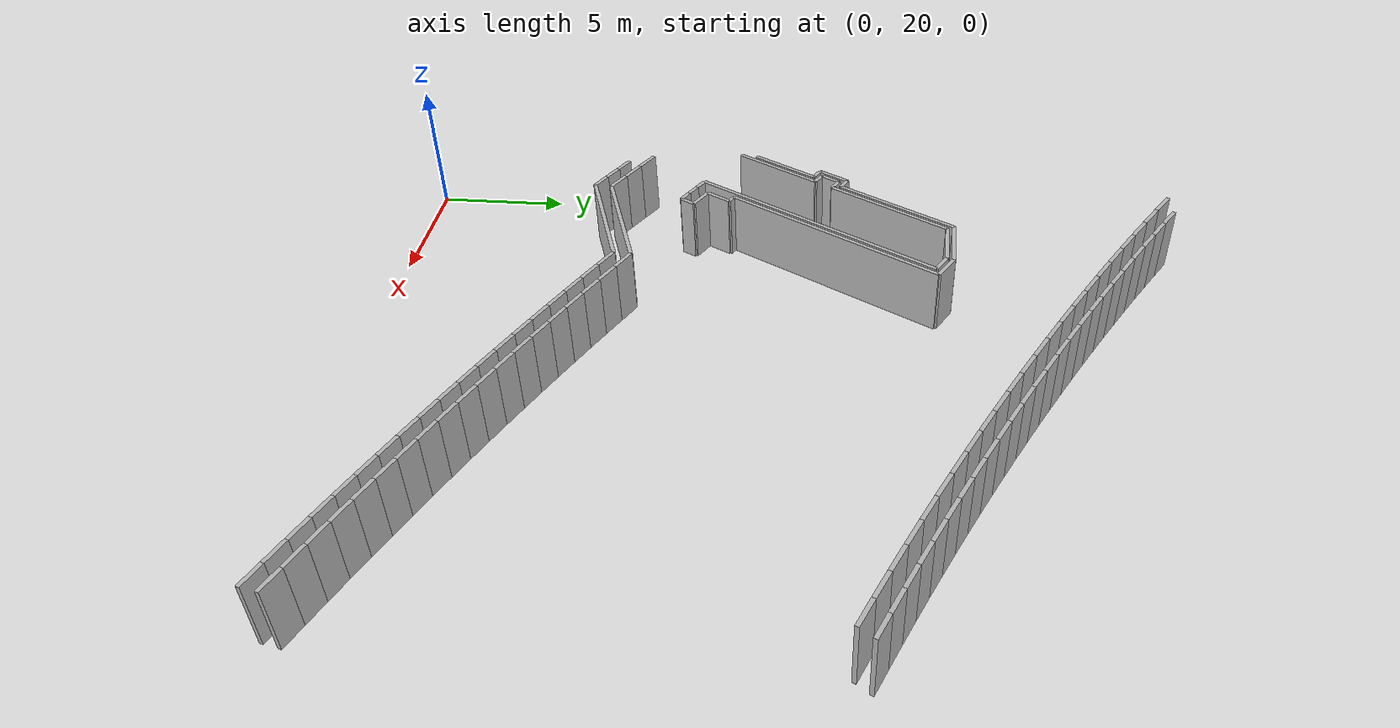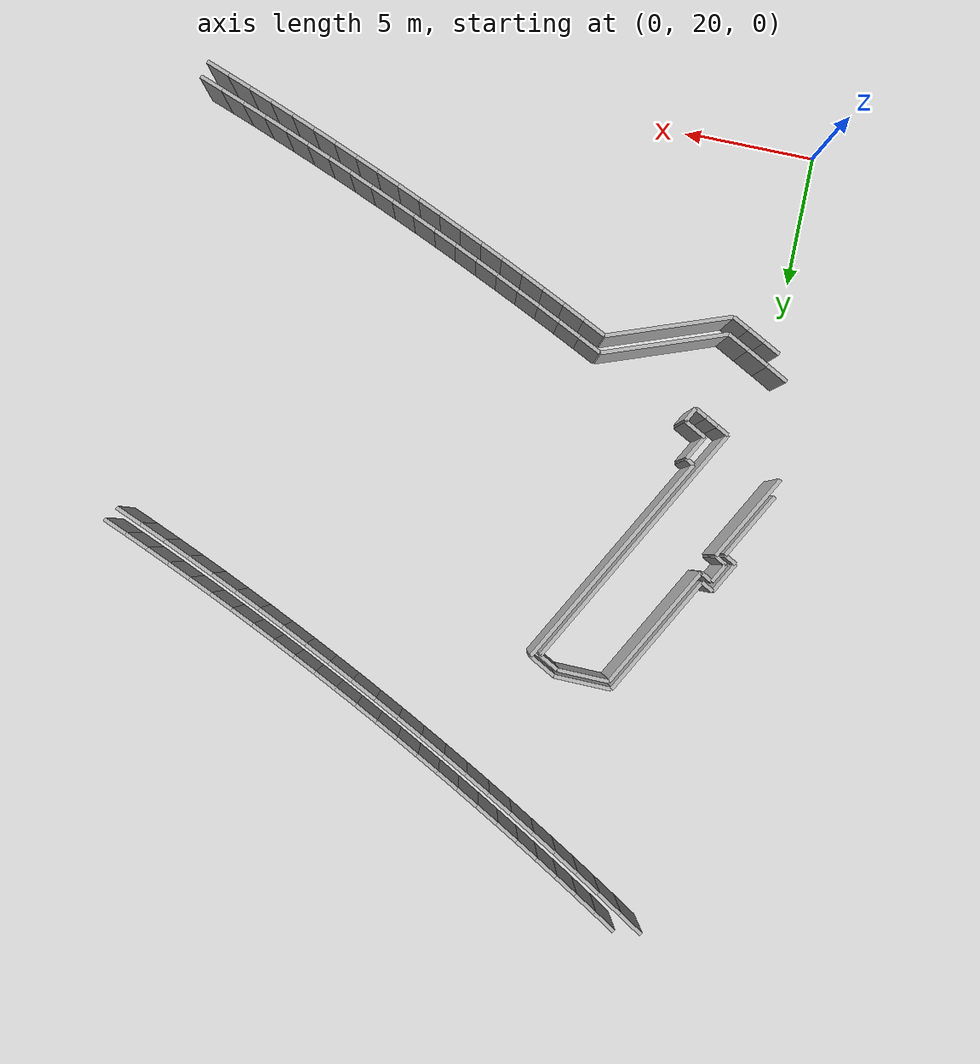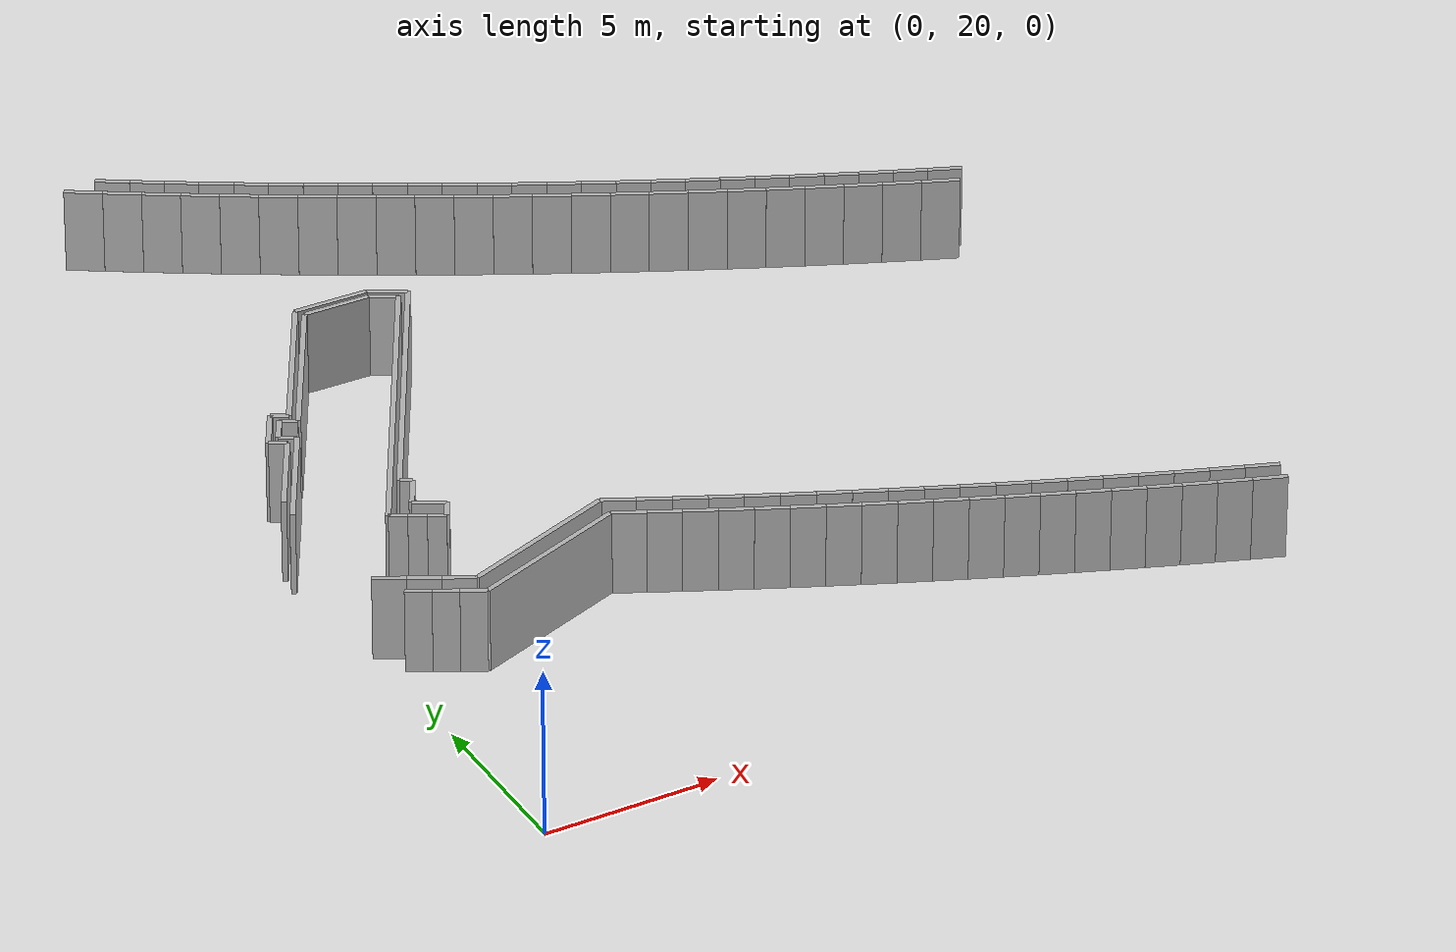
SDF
<sdf version="1.6">
 <model name="sps_0300">
  <static>1</static>
  <allow_auto_disable>0</allow_auto_disable>
  <link name="Wall42">
   <collision name="collision"><geometry><box><size>3.66476 0.15 2.5</size></box></geometry></collision>
   <visual name="visual">
    <geometry><box><size>3.66476 0.15 2.5</size></box></geometry>
    <transparency>0.0</transparency>
   </visual>
   <pose>0.297355 34.3015 1.25 0 0 -2.08078</pose>
  </link>
  <link name="Wall45">
   <collision name="collision"><geometry><box><size>1.92312 0.15 2.5</size></box></geometry></collision>
   <visual name="visual">
    <geometry><box><size>1.92312 0.15 2.5</size></box></geometry>
    <transparency>0.0</transparency>
   </visual>
   <pose>5.08193 41.115 1.25 0 -0 3.11861</pose>
  </link>
  <link name="Wall428">
   <collision name="collision"><geometry><box><size>0.500592 0.15 2.5</size></box></geometry></collision>
   <visual name="visual">
    <geometry><box><size>0.500592 0.15 2.5</size></box></geometry>
    <transparency>0.0</transparency>
   </visual>
   <pose>0.63375 35.9267 1.25 0 -0 2.6306</pose>
  </link>
  <link name="Wall1173">
   <collision name="collision"><geometry><box><size>1.29954 0.15 2.5</size></box></geometry></collision>
   <visual name="visual">
    <geometry><box><size>1.29954 0.15 2.5</size></box></geometry>
    <transparency>0.0</transparency>
   </visual>
   <pose>0.732749 36.6161 1.25 0 -0 1.06059</pose>
  </link>
  <link name="Wall1175">
   <collision name="collision"><geometry><box><size>10.5653 0.15 2.5</size></box></geometry></collision>
   <visual name="visual">
    <geometry><box><size>10.5653 0.15 2.5</size></box></geometry>
    <transparency>0.0</transparency>
   </visual>
   <pose>4.16296 36.092 1.25 0 -0 1.06083</pose>
  </link>
  <link name="Wall1176">
   <collision name="collision"><geometry><box><size>9.165 0.15 2.5</size></box></geometry></collision>
   <visual name="visual">
    <geometry><box><size>9.165 0.15 2.5</size></box></geometry>
    <transparency>0.0</transparency>
   </visual>
   <pose>4.84545 36.7988 1.25 0 0 -2.08072</pose>
  </link>
  <link name="Wall1492">
   <collision name="collision"><geometry><box><size>0.499388 0.15 2.5</size></box></geometry></collision>
   <visual name="visual">
    <geometry><box><size>0.499388 0.15 2.5</size></box></geometry>
    <transparency>0.0</transparency>
   </visual>
   <pose>0.974052 36.0228 1.25 0 0 -0.510945</pose>
  </link>
  <link name="Wall1493">
   <collision name="collision"><geometry><box><size>0.499388 0.15 2.5</size></box></geometry></collision>
   <visual name="visual">
    <geometry><box><size>0.499388 0.15 2.5</size></box></geometry>
    <transparency>0.0</transparency>
   </visual>
   <pose>1.36443 36.7212 1.25 0 -0 2.63065</pose>
  </link>
  <link name="Wall1494">
   <collision name="collision"><geometry><box><size>1.04331 0.15 2.5</size></box></geometry></collision>
   <visual name="visual">
    <geometry><box><size>1.04331 0.15 2.5</size></box></geometry>
    <transparency>0.0</transparency>
   </visual>
   <pose>2.65905 32.1731 1.25 0 0 -2.08108</pose>
  </link>
  <link name="Wall1495">
   <collision name="collision"><geometry><box><size>0.921108 0.15 2.5</size></box></geometry></collision>
   <visual name="visual">
    <geometry><box><size>0.921108 0.15 2.5</size></box></geometry>
    <transparency>0.0</transparency>
   </visual>
   <pose>2.80935 31.4988 1.25 0 -0 2.64576</pose>
  </link>
  <link name="Wall1496">
   <collision name="collision"><geometry><box><size>5.19972 0.15 2.5</size></box></geometry></collision>
   <visual name="visual">
    <geometry><box><size>5.19972 0.15 2.5</size></box></geometry>
    <transparency>0.0</transparency>
   </visual>
   <pose>2.85143 38.8681 1.25 0 0 -2.0808</pose>
  </link>
  <link name="Wall1498">
   <collision name="collision"><geometry><box><size>2.136 0.15 2.5</size></box></geometry></collision>
   <visual name="visual">
    <geometry><box><size>2.136 0.15 2.5</size></box></geometry>
    <transparency>0.0</transparency>
   </visual>
   <pose>5.04375 41.3663 1.25 0 0 -0.0230331</pose>
  </link>
  <link name="Wall1499">
   <collision name="collision"><geometry><box><size>1.1125 0.15 2.5</size></box></geometry></collision>
   <visual name="visual">
    <geometry><box><size>1.1125 0.15 2.5</size></box></geometry>
    <transparency>0.0</transparency>
   </visual>
   <pose>6.59685 41.07 1.25 0 0 -0.510306</pose>
  </link>
  <link name="Wall1788">
   <collision name="collision"><geometry><box><size>0.800069 0.15 2.5</size></box></geometry></collision>
   <visual name="visual">
    <geometry><box><size>0.800069 0.15 2.5</size></box></geometry>
    <transparency>0.0</transparency>
   </visual>
   <pose>0.951438 36.4941 1.25 0 0 -2.08052</pose>
  </link>
  <link name="Wall1789">
   <collision name="collision"><geometry><box><size>0.499548 0.15 2.5</size></box></geometry></collision>
   <visual name="visual">
    <geometry><box><size>0.499548 0.15 2.5</size></box></geometry>
    <transparency>0.0</transparency>
   </visual>
   <pose>1.26797 37.061 1.25 0 0 -0.510765</pose>
  </link>
  <link name="Wall1790">
   <collision name="collision"><geometry><box><size>0.600244 0.15 2.5</size></box></geometry></collision>
   <visual name="visual">
    <geometry><box><size>0.600244 0.15 2.5</size></box></geometry>
    <transparency>0.0</transparency>
   </visual>
   <pose>3.07244 31.0153 1.25 0 0 -2.06364</pose>
  </link>
  <link name="Wall1791">
   <collision name="collision"><geometry><box><size>5.10107 0.15 2.5</size></box></geometry></collision>
   <visual name="visual">
    <geometry><box><size>5.10107 0.15 2.5</size></box></geometry>
    <transparency>0.0</transparency>
   </visual>
   <pose>2.73095 39.1649 1.25 0 -0 1.06081</pose>
  </link>
  <link name="Wall1792">
   <collision name="collision"><geometry><box><size>4.78681 0.15 2.5</size></box></geometry></collision>
   <visual name="visual">
    <geometry><box><size>4.78681 0.15 2.5</size></box></geometry>
    <transparency>0.0</transparency>
   </visual>
   <pose>4.47057 27.9739 1.25 0 0 -2.79724</pose>
  </link>
  <link name="Wall1793">
   <collision name="collision"><geometry><box><size>4.78058 0.15 2.5</size></box></geometry></collision>
   <visual name="visual">
    <geometry><box><size>4.78058 0.15 2.5</size></box></geometry>
    <transparency>0.0</transparency>
   </visual>
   <pose>4.51397 28.6268 1.25 0 0 -2.79717</pose>
  </link>
  <link name="Wall2132">
   <collision name="collision"><geometry><box><size>2.81236 0.15 2.5</size></box></geometry></collision>
   <visual name="visual">
    <geometry><box><size>2.81236 0.15 2.5</size></box></geometry>
    <transparency>0.0</transparency>
   </visual>
   <pose>0.16555 34.5771 1.25 0 -0 1.06075</pose>
  </link>
  <link name="Wall2515">
   <collision name="collision"><geometry><box><size>0.349799 0.15 2.5</size></box></geometry></collision>
   <visual name="visual">
    <geometry><box><size>0.349799 0.15 2.5</size></box></geometry>
    <transparency>0.0</transparency>
   </visual>
   <pose>2.76125 32.7138 1.25 0 0 -0.510641</pose>
  </link>
  <link name="Wall2517">
   <collision name="collision"><geometry><box><size>0.800152 0.15 2.5</size></box></geometry></collision>
   <visual name="visual">
    <geometry><box><size>0.800152 0.15 2.5</size></box></geometry>
    <transparency>0.0</transparency>
   </visual>
   <pose>6.39245 40.8977 1.25 0 -0 2.63184</pose>
  </link>
  <link name="Wall9144">
   <collision name="collision"><geometry><box><size>0.950719 0.15 2.5</size></box></geometry></collision>
   <visual name="visual">
    <geometry><box><size>0.950719 0.15 2.5</size></box></geometry>
    <transparency>0.0</transparency>
   </visual>
   <pose>2.61306 49.6466 1.25 0 0 -0.557497</pose>
  </link>
  <link name="Wall9145">
   <collision name="collision"><geometry><box><size>0.950723 0.15 2.5</size></box></geometry></collision>
   <visual name="visual">
    <geometry><box><size>0.950723 0.15 2.5</size></box></geometry>
    <transparency>0.0</transparency>
   </visual>
   <pose>3.42156 49.1464 1.25 0 0 -0.550549</pose>
  </link>
  <link name="Wall9146">
   <collision name="collision"><geometry><box><size>0.950921 0.15 2.5</size></box></geometry></collision>
   <visual name="visual">
    <geometry><box><size>0.950921 0.15 2.5</size></box></geometry>
    <transparency>0.0</transparency>
   </visual>
   <pose>4.23348 48.6516 1.25 0 0 -0.544107</pose>
  </link>
  <link name="Wall9147">
   <collision name="collision"><geometry><box><size>0.950721 0.15 2.5</size></box></geometry></collision>
   <visual name="visual">
    <geometry><box><size>0.950721 0.15 2.5</size></box></geometry>
    <transparency>0.0</transparency>
   </visual>
   <pose>5.04867 48.1622 1.25 0 0 -0.537271</pose>
  </link>
  <link name="Wall9148">
   <collision name="collision"><geometry><box><size>0.950929 0.15 2.5</size></box></geometry></collision>
   <visual name="visual">
    <geometry><box><size>0.950929 0.15 2.5</size></box></geometry>
    <transparency>0.0</transparency>
   </visual>
   <pose>5.86715 47.6783 1.25 0 0 -0.530579</pose>
  </link>
  <link name="Wall9149">
   <collision name="collision"><geometry><box><size>0.950742 0.15 2.5</size></box></geometry></collision>
   <visual name="visual">
    <geometry><box><size>0.950742 0.15 2.5</size></box></geometry>
    <transparency>0.0</transparency>
   </visual>
   <pose>6.68886 47.1999 1.25 0 0 -0.52386</pose>
  </link>
  <link name="Wall9150">
   <collision name="collision"><geometry><box><size>0.95068 0.15 2.5</size></box></geometry></collision>
   <visual name="visual">
    <geometry><box><size>0.95068 0.15 2.5</size></box></geometry>
    <transparency>0.0</transparency>
   </visual>
   <pose>7.51366 46.7271 1.25 0 0 -0.517163</pose>
  </link>
  <link name="Wall9151">
   <collision name="collision"><geometry><box><size>0.95104 0.15 2.5</size></box></geometry></collision>
   <visual name="visual">
    <geometry><box><size>0.95104 0.15 2.5</size></box></geometry>
    <transparency>0.0</transparency>
   </visual>
   <pose>8.34176 46.2598 1.25 0 0 -0.51039</pose>
  </link>
  <link name="Wall9152">
   <collision name="collision"><geometry><box><size>0.950714 0.15 2.5</size></box></geometry></collision>
   <visual name="visual">
    <geometry><box><size>0.950714 0.15 2.5</size></box></geometry>
    <transparency>0.0</transparency>
   </visual>
   <pose>9.17297 45.798 1.25 0 0 -0.503825</pose>
  </link>
  <link name="Wall9153">
   <collision name="collision"><geometry><box><size>0.950887 0.15 2.5</size></box></geometry></collision>
   <visual name="visual">
    <geometry><box><size>0.950887 0.15 2.5</size></box></geometry>
    <transparency>0.0</transparency>
   </visual>
   <pose>10.0072 45.3418 1.25 0 0 -0.497067</pose>
  </link>
  <link name="Wall9154">
   <collision name="collision"><geometry><box><size>0.950615 0.15 2.5</size></box></geometry></collision>
   <visual name="visual">
    <geometry><box><size>0.950615 0.15 2.5</size></box></geometry>
    <transparency>0.0</transparency>
   </visual>
   <pose>10.8444 44.8912 1.25 0 0 -0.490441</pose>
  </link>
  <link name="Wall9155">
   <collision name="collision"><geometry><box><size>0.950875 0.15 2.5</size></box></geometry></collision>
   <visual name="visual">
    <geometry><box><size>0.950875 0.15 2.5</size></box></geometry>
    <transparency>0.0</transparency>
   </visual>
   <pose>11.6845 44.4462 1.25 0 0 -0.483686</pose>
  </link>
  <link name="Wall9156">
   <collision name="collision"><geometry><box><size>0.950902 0.15 2.5</size></box></geometry></collision>
   <visual name="visual">
    <geometry><box><size>0.950902 0.15 2.5</size></box></geometry>
    <transparency>0.0</transparency>
   </visual>
   <pose>12.5279 44.0069 1.25 0 0 -0.476795</pose>
  </link>
  <link name="Wall9157">
   <collision name="collision"><geometry><box><size>0.950814 0.15 2.5</size></box></geometry></collision>
   <visual name="visual">
    <geometry><box><size>0.950814 0.15 2.5</size></box></geometry>
    <transparency>0.0</transparency>
   </visual>
   <pose>13.3741 43.5733 1.25 0 0 -0.470279</pose>
  </link>
  <link name="Wall9158">
   <collision name="collision"><geometry><box><size>0.950848 0.15 2.5</size></box></geometry></collision>
   <visual name="visual">
    <geometry><box><size>0.950848 0.15 2.5</size></box></geometry>
    <transparency>0.0</transparency>
   </visual>
   <pose>14.2232 43.1454 1.25 0 0 -0.463361</pose>
  </link>
  <link name="Wall9159">
   <collision name="collision"><geometry><box><size>0.950706 0.15 2.5</size></box></geometry></collision>
   <visual name="visual">
    <geometry><box><size>0.950706 0.15 2.5</size></box></geometry>
    <transparency>0.0</transparency>
   </visual>
   <pose>15.0751 42.7232 1.25 0 0 -0.456843</pose>
  </link>
  <link name="Wall9160">
   <collision name="collision"><geometry><box><size>0.950741 0.15 2.5</size></box></geometry></collision>
   <visual name="visual">
    <geometry><box><size>0.950741 0.15 2.5</size></box></geometry>
    <transparency>0.0</transparency>
   </visual>
   <pose>15.9296 42.3066 1.25 0 0 -0.450326</pose>
  </link>
  <link name="Wall9161">
   <collision name="collision"><geometry><box><size>0.950987 0.15 2.5</size></box></geometry></collision>
   <visual name="visual">
    <geometry><box><size>0.950987 0.15 2.5</size></box></geometry>
    <transparency>0.0</transparency>
   </visual>
   <pose>16.7871 41.8957 1.25 0 0 -0.44344</pose>
  </link>
  <link name="Wall9162">
   <collision name="collision"><geometry><box><size>0.950865 0.15 2.5</size></box></geometry></collision>
   <visual name="visual">
    <geometry><box><size>0.950865 0.15 2.5</size></box></geometry>
    <transparency>0.0</transparency>
   </visual>
   <pose>17.6475 41.4906 1.25 0 0 -0.436689</pose>
  </link>
  <link name="Wall9163">
   <collision name="collision"><geometry><box><size>0.950783 0.15 2.5</size></box></geometry></collision>
   <visual name="visual">
    <geometry><box><size>0.950783 0.15 2.5</size></box></geometry>
    <transparency>0.0</transparency>
   </visual>
   <pose>18.5104 41.0913 1.25 0 0 -0.430081</pose>
  </link>
  <link name="Wall9164">
   <collision name="collision"><geometry><box><size>0.950914 0.15 2.5</size></box></geometry></collision>
   <visual name="visual">
    <geometry><box><size>0.950914 0.15 2.5</size></box></geometry>
    <transparency>0.0</transparency>
   </visual>
   <pose>19.376 40.6978 1.25 0 0 -0.423249</pose>
  </link>
  <link name="Wall9165">
   <collision name="collision"><geometry><box><size>0.950674 0.15 2.5</size></box></geometry></collision>
   <visual name="visual">
    <geometry><box><size>0.950674 0.15 2.5</size></box></geometry>
    <transparency>0.0</transparency>
   </visual>
   <pose>20.2442 40.3102 1.25 0 0 -0.416542</pose>
  </link>
  <link name="Wall9166">
   <collision name="collision"><geometry><box><size>0.950798 0.15 2.5</size></box></geometry></collision>
   <visual name="visual">
    <geometry><box><size>0.950798 0.15 2.5</size></box></geometry>
    <transparency>0.0</transparency>
   </visual>
   <pose>21.1149 39.9284 1.25 0 0 -0.409966</pose>
  </link>
  <link name="Wall9167">
   <collision name="collision"><geometry><box><size>0.950787 0.15 2.5</size></box></geometry></collision>
   <visual name="visual">
    <geometry><box><size>0.950787 0.15 2.5</size></box></geometry>
    <transparency>0.0</transparency>
   </visual>
   <pose>21.9882 39.5524 1.25 0 0 -0.403122</pose>
  </link>
  <link name="Wall9168">
   <collision name="collision"><geometry><box><size>0.950802 0.15 2.5</size></box></geometry></collision>
   <visual name="visual">
    <geometry><box><size>0.950802 0.15 2.5</size></box></geometry>
    <transparency>0.0</transparency>
   </visual>
   <pose>22.8639 39.1823 1.25 0 0 -0.396564</pose>
  </link>
  <link name="Wall9227">
   <collision name="collision"><geometry><box><size>0.939603 0.15 2.5</size></box></geometry></collision>
   <visual name="visual">
    <geometry><box><size>0.939603 0.15 2.5</size></box></geometry>
    <transparency>0.0</transparency>
   </visual>
   <pose>7.14397 28.5724 1.25 0 0 -0.462224</pose>
  </link>
  <link name="Wall9228">
   <collision name="collision"><geometry><box><size>0.939598 0.15 2.5</size></box></geometry></collision>
   <visual name="visual">
    <geometry><box><size>0.939598 0.15 2.5</size></box></geometry>
    <transparency>0.0</transparency>
   </visual>
   <pose>7.98617 28.1558 1.25 0 0 -0.456501</pose>
  </link>
  <link name="Wall9229">
   <collision name="collision"><geometry><box><size>0.93952 0.15 2.5</size></box></geometry></collision>
   <visual name="visual">
    <geometry><box><size>0.93952 0.15 2.5</size></box></geometry>
    <transparency>0.0</transparency>
   </visual>
   <pose>8.83077 27.7442 1.25 0 0 -0.450399</pose>
  </link>
  <link name="Wall9230">
   <collision name="collision"><geometry><box><size>0.93991 0.15 2.5</size></box></geometry></collision>
   <visual name="visual">
    <geometry><box><size>0.93991 0.15 2.5</size></box></geometry>
    <transparency>0.0</transparency>
   </visual>
   <pose>9.67797 27.3376 1.25 0 0 -0.444509</pose>
  </link>
  <link name="Wall9231">
   <collision name="collision"><geometry><box><size>0.939618 0.15 2.5</size></box></geometry></collision>
   <visual name="visual">
    <geometry><box><size>0.939618 0.15 2.5</size></box></geometry>
    <transparency>0.0</transparency>
   </visual>
   <pose>10.5275 26.9359 1.25 0 0 -0.438836</pose>
  </link>
  <link name="Wall9232">
   <collision name="collision"><geometry><box><size>0.939782 0.15 2.5</size></box></geometry></collision>
   <visual name="visual">
    <geometry><box><size>0.939782 0.15 2.5</size></box></geometry>
    <transparency>0.0</transparency>
   </visual>
   <pose>11.3794 26.5393 1.25 0 0 -0.432594</pose>
  </link>
  <link name="Wall9233">
   <collision name="collision"><geometry><box><size>0.939785 0.15 2.5</size></box></geometry></collision>
   <visual name="visual">
    <geometry><box><size>0.939785 0.15 2.5</size></box></geometry>
    <transparency>0.0</transparency>
   </visual>
   <pose>12.2338 26.1479 1.25 0 0 -0.42652</pose>
  </link>
  <link name="Wall9234">
   <collision name="collision"><geometry><box><size>0.939564 0.15 2.5</size></box></geometry></collision>
   <visual name="visual">
    <geometry><box><size>0.939564 0.15 2.5</size></box></geometry>
    <transparency>0.0</transparency>
   </visual>
   <pose>13.0904 25.7616 1.25 0 0 -0.420784</pose>
  </link>
  <link name="Wall9235">
   <collision name="collision"><geometry><box><size>0.939733 0.15 2.5</size></box></geometry></collision>
   <visual name="visual">
    <geometry><box><size>0.939733 0.15 2.5</size></box></geometry>
    <transparency>0.0</transparency>
   </visual>
   <pose>13.9492 25.3803 1.25 0 0 -0.414947</pose>
  </link>
  <link name="Wall9236">
   <collision name="collision"><geometry><box><size>0.939701 0.15 2.5</size></box></geometry></collision>
   <visual name="visual">
    <geometry><box><size>0.939701 0.15 2.5</size></box></geometry>
    <transparency>0.0</transparency>
   </visual>
   <pose>14.8104 25.0041 1.25 0 0 -0.408866</pose>
  </link>
  <link name="Wall9237">
   <collision name="collision"><geometry><box><size>0.939615 0.15 2.5</size></box></geometry></collision>
   <visual name="visual">
    <geometry><box><size>0.939615 0.15 2.5</size></box></geometry>
    <transparency>0.0</transparency>
   </visual>
   <pose>15.6737 24.6331 1.25 0 0 -0.402896</pose>
  </link>
  <link name="Wall9238">
   <collision name="collision"><geometry><box><size>0.939596 0.15 2.5</size></box></geometry></collision>
   <visual name="visual">
    <geometry><box><size>0.939596 0.15 2.5</size></box></geometry>
    <transparency>0.0</transparency>
   </visual>
   <pose>16.5391 24.2673 1.25 0 0 -0.39684</pose>
  </link>
  <link name="Wall9239">
   <collision name="collision"><geometry><box><size>0.939784 0.15 2.5</size></box></geometry></collision>
   <visual name="visual">
    <geometry><box><size>0.939784 0.15 2.5</size></box></geometry>
    <transparency>0.0</transparency>
   </visual>
   <pose>17.4069 23.9066 1.25 0 0 -0.391059</pose>
  </link>
  <link name="Wall9240">
   <collision name="collision"><geometry><box><size>0.939798 0.15 2.5</size></box></geometry></collision>
   <visual name="visual">
    <geometry><box><size>0.939798 0.15 2.5</size></box></geometry>
    <transparency>0.0</transparency>
   </visual>
   <pose>18.2768 23.551 1.25 0 0 -0.385089</pose>
  </link>
  <link name="Wall9241">
   <collision name="collision"><geometry><box><size>0.939539 0.15 2.5</size></box></geometry></collision>
   <visual name="visual">
    <geometry><box><size>0.939539 0.15 2.5</size></box></geometry>
    <transparency>0.0</transparency>
   </visual>
   <pose>19.1486 23.2006 1.25 0 0 -0.379179</pose>
  </link>
  <link name="Wall9242">
   <collision name="collision"><geometry><box><size>0.939677 0.15 2.5</size></box></geometry></collision>
   <visual name="visual">
    <geometry><box><size>0.939677 0.15 2.5</size></box></geometry>
    <transparency>0.0</transparency>
   </visual>
   <pose>20.0225 22.8554 1.25 0 0 -0.373185</pose>
  </link>
  <link name="Wall9243">
   <collision name="collision"><geometry><box><size>0.939849 0.15 2.5</size></box></geometry></collision>
   <visual name="visual">
    <geometry><box><size>0.939849 0.15 2.5</size></box></geometry>
    <transparency>0.0</transparency>
   </visual>
   <pose>20.8986 22.5154 1.25 0 0 -0.367192</pose>
  </link>
  <link name="Wall9244">
   <collision name="collision"><geometry><box><size>0.939711 0.15 2.5</size></box></geometry></collision>
   <visual name="visual">
    <geometry><box><size>0.939711 0.15 2.5</size></box></geometry>
    <transparency>0.0</transparency>
   </visual>
   <pose>21.7768 22.1806 1.25 0 0 -0.36134</pose>
  </link>
  <link name="Wall9245">
   <collision name="collision"><geometry><box><size>0.939699 0.15 2.5</size></box></geometry></collision>
   <visual name="visual">
    <geometry><box><size>0.939699 0.15 2.5</size></box></geometry>
    <transparency>0.0</transparency>
   </visual>
   <pose>22.6568 21.851 1.25 0 0 -0.35538</pose>
  </link>
  <link name="Wall12807">
   <collision name="collision"><geometry><box><size>0.719782 0.15 2.5</size></box></geometry></collision>
   <visual name="visual">
    <geometry><box><size>0.719782 0.15 2.5</size></box></geometry>
    <transparency>0.0</transparency>
   </visual>
   <pose>1.89977 27.3346 1.25 0 -0 2.65371</pose>
  </link>
  <link name="Wall12808">
   <collision name="collision"><geometry><box><size>0.719865 0.15 2.5</size></box></geometry></collision>
   <visual name="visual">
    <geometry><box><size>0.719865 0.15 2.5</size></box></geometry>
    <transparency>0.0</transparency>
   </visual>
   <pose>1.26467 27.6734 1.25 0 -0 2.64935</pose>
  </link>
  <link name="Wall12809">
   <collision name="collision"><geometry><box><size>0.71961 0.15 2.5</size></box></geometry></collision>
   <visual name="visual">
    <geometry><box><size>0.71961 0.15 2.5</size></box></geometry>
    <transparency>0.0</transparency>
   </visual>
   <pose>0.631156 28.015 1.25 0 -0 2.64482</pose>
  </link>
  <link name="Wall18997">
   <collision name="collision"><geometry><box><size>0.51042 0.15 2.5</size></box></geometry></collision>
   <visual name="visual">
    <geometry><box><size>0.51042 0.15 2.5</size></box></geometry>
    <transparency>0.0</transparency>
   </visual>
   <pose>2.70574 30.8719 1.25 0 -0 2.64762</pose>
  </link>
  <link name="Wall18998">
   <collision name="collision"><geometry><box><size>0.510637 0.15 2.5</size></box></geometry></collision>
   <visual name="visual">
    <geometry><box><size>0.510637 0.15 2.5</size></box></geometry>
    <transparency>0.0</transparency>
   </visual>
   <pose>2.25664 31.1147 1.25 0 -0 2.64432</pose>
  </link>
  <link name="Wall18999">
   <collision name="collision"><geometry><box><size>0.510642 0.15 2.5</size></box></geometry></collision>
   <visual name="visual">
    <geometry><box><size>0.510642 0.15 2.5</size></box></geometry>
    <transparency>0.0</transparency>
   </visual>
   <pose>1.80825 31.359 1.25 0 -0 2.64105</pose>
  </link>
  <link name="Wall19025">
   <collision name="collision"><geometry><box><size>1.06663 0.15 2.5</size></box></geometry></collision>
   <visual name="visual">
    <geometry><box><size>1.06663 0.15 2.5</size></box></geometry>
    <transparency>0.0</transparency>
   </visual>
   <pose>1.66796 49.5316 1.25 0 0 -0.562718</pose>
  </link>
  <link name="Wall19026">
   <collision name="collision"><geometry><box><size>1.06678 0.15 2.5</size></box></geometry></collision>
   <visual name="visual">
    <geometry><box><size>1.06678 0.15 2.5</size></box></geometry>
    <transparency>0.0</transparency>
   </visual>
   <pose>2.57235 48.966 1.25 0 0 -0.55507</pose>
  </link>
  <link name="Wall19027">
   <collision name="collision"><geometry><box><size>1.06661 0.15 2.5</size></box></geometry></collision>
   <visual name="visual">
    <geometry><box><size>1.06661 0.15 2.5</size></box></geometry>
    <transparency>0.0</transparency>
   </visual>
   <pose>3.48095 48.4072 1.25 0 0 -0.547711</pose>
  </link>
  <link name="Wall19028">
   <collision name="collision"><geometry><box><size>1.06688 0.15 2.5</size></box></geometry></collision>
   <visual name="visual">
    <geometry><box><size>1.06688 0.15 2.5</size></box></geometry>
    <transparency>0.0</transparency>
   </visual>
   <pose>4.39376 47.8552 1.25 0 0 -0.540066</pose>
  </link>
  <link name="Wall19029">
   <collision name="collision"><geometry><box><size>1.06683 0.15 2.5</size></box></geometry></collision>
   <visual name="visual">
    <geometry><box><size>1.06683 0.15 2.5</size></box></geometry>
    <transparency>0.0</transparency>
   </visual>
   <pose>5.31078 47.31 1.25 0 0 -0.532707</pose>
  </link>
  <link name="Wall19030">
   <collision name="collision"><geometry><box><size>1.06662 0.15 2.5</size></box></geometry></collision>
   <visual name="visual">
    <geometry><box><size>1.06662 0.15 2.5</size></box></geometry>
    <transparency>0.0</transparency>
   </visual>
   <pose>6.23177 46.7718 1.25 0 0 -0.525002</pose>
  </link>
  <link name="Wall19031">
   <collision name="collision"><geometry><box><size>1.0668 0.15 2.5</size></box></geometry></collision>
   <visual name="visual">
    <geometry><box><size>1.0668 0.15 2.5</size></box></geometry>
    <transparency>0.0</transparency>
   </visual>
   <pose>7.15676 46.2405 1.25 0 0 -0.517713</pose>
  </link>
  <link name="Wall19032">
   <collision name="collision"><geometry><box><size>1.06675 0.15 2.5</size></box></geometry></collision>
   <visual name="visual">
    <geometry><box><size>1.06675 0.15 2.5</size></box></geometry>
    <transparency>0.0</transparency>
   </visual>
   <pose>8.08575 45.7161 1.25 0 0 -0.510055</pose>
  </link>
  <link name="Wall19033">
   <collision name="collision"><geometry><box><size>1.06682 0.15 2.5</size></box></geometry></collision>
   <visual name="visual">
    <geometry><box><size>1.06682 0.15 2.5</size></box></geometry>
    <transparency>0.0</transparency>
   </visual>
   <pose>9.01864 45.1987 1.25 0 0 -0.502753</pose>
  </link>
  <link name="Wall19034">
   <collision name="collision"><geometry><box><size>1.06676 0.15 2.5</size></box></geometry></collision>
   <visual name="visual">
    <geometry><box><size>1.06676 0.15 2.5</size></box></geometry>
    <transparency>0.0</transparency>
   </visual>
   <pose>9.95534 44.6882 1.25 0 0 -0.495228</pose>
  </link>
  <link name="Wall19035">
   <collision name="collision"><geometry><box><size>1.06656 0.15 2.5</size></box></geometry></collision>
   <visual name="visual">
    <geometry><box><size>1.06656 0.15 2.5</size></box></geometry>
    <transparency>0.0</transparency>
   </visual>
   <pose>10.8957 44.1848 1.25 0 0 -0.487732</pose>
  </link>
  <link name="Wall19036">
   <collision name="collision"><geometry><box><size>1.06686 0.15 2.5</size></box></geometry></collision>
   <visual name="visual">
    <geometry><box><size>1.06686 0.15 2.5</size></box></geometry>
    <transparency>0.0</transparency>
   </visual>
   <pose>11.84 43.6885 1.25 0 0 -0.480151</pose>
  </link>
  <link name="Wall19037">
   <collision name="collision"><geometry><box><size>1.06679 0.15 2.5</size></box></geometry></collision>
   <visual name="visual">
    <geometry><box><size>1.06679 0.15 2.5</size></box></geometry>
    <transparency>0.0</transparency>
   </visual>
   <pose>12.788 43.1992 1.25 0 0 -0.472782</pose>
  </link>
  <link name="Wall19038">
   <collision name="collision"><geometry><box><size>1.06683 0.15 2.5</size></box></geometry></collision>
   <visual name="visual">
    <geometry><box><size>1.06683 0.15 2.5</size></box></geometry>
    <transparency>0.0</transparency>
   </visual>
   <pose>13.7396 42.717 1.25 0 0 -0.46526</pose>
  </link>
  <link name="Wall19039">
   <collision name="collision"><geometry><box><size>1.06676 0.15 2.5</size></box></geometry></collision>
   <visual name="visual">
    <geometry><box><size>1.06676 0.15 2.5</size></box></geometry>
    <transparency>0.0</transparency>
   </visual>
   <pose>14.6948 42.242 1.25 0 0 -0.457686</pose>
  </link>
  <link name="Wall19040">
   <collision name="collision"><geometry><box><size>1.0667 0.15 2.5</size></box></geometry></collision>
   <visual name="visual">
    <geometry><box><size>1.0667 0.15 2.5</size></box></geometry>
    <transparency>0.0</transparency>
   </visual>
   <pose>15.6534 41.7742 1.25 0 0 -0.450264</pose>
  </link>
  <link name="Wall19041">
   <collision name="collision"><geometry><box><size>1.06673 0.15 2.5</size></box></geometry></collision>
   <visual name="visual">
    <geometry><box><size>1.06673 0.15 2.5</size></box></geometry>
    <transparency>0.0</transparency>
   </visual>
   <pose>16.6155 41.3135 1.25 0 0 -0.442894</pose>
  </link>
  <link name="Wall19042">
   <collision name="collision"><geometry><box><size>1.06688 0.15 2.5</size></box></geometry></collision>
   <visual name="visual">
    <geometry><box><size>1.06688 0.15 2.5</size></box></geometry>
    <transparency>0.0</transparency>
   </visual>
   <pose>17.5811 40.86 1.25 0 0 -0.435245</pose>
  </link>
  <link name="Wall19043">
   <collision name="collision"><geometry><box><size>1.06678 0.15 2.5</size></box></geometry></collision>
   <visual name="visual">
    <geometry><box><size>1.06678 0.15 2.5</size></box></geometry>
    <transparency>0.0</transparency>
   </visual>
   <pose>18.5502 40.4138 1.25 0 0 -0.427792</pose>
  </link>
  <link name="Wall19044">
   <collision name="collision"><geometry><box><size>1.06682 0.15 2.5</size></box></geometry></collision>
   <visual name="visual">
    <geometry><box><size>1.06682 0.15 2.5</size></box></geometry>
    <transparency>0.0</transparency>
   </visual>
   <pose>19.5225 39.9749 1.25 0 0 -0.42024</pose>
  </link>
  <link name="Wall19045">
   <collision name="collision"><geometry><box><size>1.06679 0.15 2.5</size></box></geometry></collision>
   <visual name="visual">
    <geometry><box><size>1.06679 0.15 2.5</size></box></geometry>
    <transparency>0.0</transparency>
   </visual>
   <pose>20.4981 39.5433 1.25 0 0 -0.41281</pose>
  </link>
  <link name="Wall19046">
   <collision name="collision"><geometry><box><size>1.06665 0.15 2.5</size></box></geometry></collision>
   <visual name="visual">
    <geometry><box><size>1.06665 0.15 2.5</size></box></geometry>
    <transparency>0.0</transparency>
   </visual>
   <pose>21.4768 39.119 1.25 0 0 -0.40532</pose>
  </link>
  <link name="Wall19047">
   <collision name="collision"><geometry><box><size>1.06675 0.15 2.5</size></box></geometry></collision>
   <visual name="visual">
    <geometry><box><size>1.06675 0.15 2.5</size></box></geometry>
    <transparency>0.0</transparency>
   </visual>
   <pose>22.4586 38.702 1.25 0 0 -0.397942</pose>
  </link>
  <link name="Wall24576">
   <collision name="collision"><geometry><box><size>0.913696 0.15 2.5</size></box></geometry></collision>
   <visual name="visual">
    <geometry><box><size>0.913696 0.15 2.5</size></box></geometry>
    <transparency>0.0</transparency>
   </visual>
   <pose>0.253654 28.9043 1.25 0 0 -0.501447</pose>
  </link>
  <link name="Wall24577">
   <collision name="collision"><geometry><box><size>0.913845 0.15 2.5</size></box></geometry></collision>
   <visual name="visual">
    <geometry><box><size>0.913845 0.15 2.5</size></box></geometry>
    <transparency>0.0</transparency>
   </visual>
   <pose>1.05614 28.4673 1.25 0 0 -0.495882</pose>
  </link>
  <link name="Wall24578">
   <collision name="collision"><geometry><box><size>0.913639 0.15 2.5</size></box></geometry></collision>
   <visual name="visual">
    <geometry><box><size>0.913639 0.15 2.5</size></box></geometry>
    <transparency>0.0</transparency>
   </visual>
   <pose>1.86105 28.0348 1.25 0 0 -0.49024</pose>
  </link>
  <link name="Wall24631">
   <collision name="collision"><geometry><box><size>0.945115 0.15 2.5</size></box></geometry></collision>
   <visual name="visual">
    <geometry><box><size>0.945115 0.15 2.5</size></box></geometry>
    <transparency>0.0</transparency>
   </visual>
   <pose>7.18645 29.2224 1.25 0 0 -0.464081</pose>
  </link>
  <link name="Wall24632">
   <collision name="collision"><geometry><box><size>0.944967 0.15 2.5</size></box></geometry></collision>
   <visual name="visual">
    <geometry><box><size>0.944967 0.15 2.5</size></box></geometry>
    <transparency>0.0</transparency>
   </visual>
   <pose>8.03283 28.802 1.25 0 0 -0.457957</pose>
  </link>
  <link name="Wall24633">
   <collision name="collision"><geometry><box><size>0.945125 0.15 2.5</size></box></geometry></collision>
   <visual name="visual">
    <geometry><box><size>0.945125 0.15 2.5</size></box></geometry>
    <transparency>0.0</transparency>
   </visual>
   <pose>8.88174 28.3867 1.25 0 0 -0.45198</pose>
  </link>
  <link name="Wall24634">
   <collision name="collision"><geometry><box><size>0.945183 0.15 2.5</size></box></geometry></collision>
   <visual name="visual">
    <geometry><box><size>0.945183 0.15 2.5</size></box></geometry>
    <transparency>0.0</transparency>
   </visual>
   <pose>9.73324 27.9765 1.25 0 0 -0.445857</pose>
  </link>
  <link name="Wall24635">
   <collision name="collision"><geometry><box><size>0.945104 0.15 2.5</size></box></geometry></collision>
   <visual name="visual">
    <geometry><box><size>0.945104 0.15 2.5</size></box></geometry>
    <transparency>0.0</transparency>
   </visual>
   <pose>10.5871 27.5714 1.25 0 0 -0.440107</pose>
  </link>
  <link name="Wall24636">
   <collision name="collision"><geometry><box><size>0.945205 0.15 2.5</size></box></geometry></collision>
   <visual name="visual">
    <geometry><box><size>0.945205 0.15 2.5</size></box></geometry>
    <transparency>0.0</transparency>
   </visual>
   <pose>11.4435 27.1714 1.25 0 0 -0.433928</pose>
  </link>
  <link name="Wall24637">
   <collision name="collision"><geometry><box><size>0.945009 0.15 2.5</size></box></geometry></collision>
   <visual name="visual">
    <geometry><box><size>0.945009 0.15 2.5</size></box></geometry>
    <transparency>0.0</transparency>
   </visual>
   <pose>12.3022 26.7766 1.25 0 0 -0.42791</pose>
  </link>
  <link name="Wall24638">
   <collision name="collision"><geometry><box><size>0.945139 0.15 2.5</size></box></geometry></collision>
   <visual name="visual">
    <geometry><box><size>0.945139 0.15 2.5</size></box></geometry>
    <transparency>0.0</transparency>
   </visual>
   <pose>13.1632 26.3869 1.25 0 0 -0.422106</pose>
  </link>
  <link name="Wall24639">
   <collision name="collision"><geometry><box><size>0.944961 0.15 2.5</size></box></geometry></collision>
   <visual name="visual">
    <geometry><box><size>0.944961 0.15 2.5</size></box></geometry>
    <transparency>0.0</transparency>
   </visual>
   <pose>14.0265 26.0024 1.25 0 0 -0.415968</pose>
  </link>
  <link name="Wall24640">
   <collision name="collision"><geometry><box><size>0.945259 0.15 2.5</size></box></geometry></collision>
   <visual name="visual">
    <geometry><box><size>0.945259 0.15 2.5</size></box></geometry>
    <transparency>0.0</transparency>
   </visual>
   <pose>14.8921 25.6232 1.25 0 0 -0.409767</pose>
  </link>
  <link name="Wall24641">
   <collision name="collision"><geometry><box><size>0.945128 0.15 2.5</size></box></geometry></collision>
   <visual name="visual">
    <geometry><box><size>0.945128 0.15 2.5</size></box></geometry>
    <transparency>0.0</transparency>
   </visual>
   <pose>15.7602 25.2491 1.25 0 0 -0.404061</pose>
  </link>
  <link name="Wall24642">
   <collision name="collision"><geometry><box><size>0.945223 0.15 2.5</size></box></geometry></collision>
   <visual name="visual">
    <geometry><box><size>0.945223 0.15 2.5</size></box></geometry>
    <transparency>0.0</transparency>
   </visual>
   <pose>16.6304 24.8802 1.25 0 0 -0.397846</pose>
  </link>
  <link name="Wall24643">
   <collision name="collision"><geometry><box><size>0.945086 0.15 2.5</size></box></geometry></collision>
   <visual name="visual">
    <geometry><box><size>0.945086 0.15 2.5</size></box></geometry>
    <transparency>0.0</transparency>
   </visual>
   <pose>17.5028 24.5166 1.25 0 0 -0.391959</pose>
  </link>
  <link name="Wall24644">
   <collision name="collision"><geometry><box><size>0.945129 0.15 2.5</size></box></geometry></collision>
   <visual name="visual">
    <geometry><box><size>0.945129 0.15 2.5</size></box></geometry>
    <transparency>0.0</transparency>
   </visual>
   <pose>18.3773 24.1582 1.25 0 0 -0.385939</pose>
  </link>
  <link name="Wall24645">
   <collision name="collision"><geometry><box><size>0.945104 0.15 2.5</size></box></geometry></collision>
   <visual name="visual">
    <geometry><box><size>0.945104 0.15 2.5</size></box></geometry>
    <transparency>0.0</transparency>
   </visual>
   <pose>19.254 23.8051 1.25 0 0 -0.379823</pose>
  </link>
  <link name="Wall24646">
   <collision name="collision"><geometry><box><size>0.945124 0.15 2.5</size></box></geometry></collision>
   <visual name="visual">
    <geometry><box><size>0.945124 0.15 2.5</size></box></geometry>
    <transparency>0.0</transparency>
   </visual>
   <pose>20.1327 23.4573 1.25 0 0 -0.373911</pose>
  </link>
  <link name="Wall24647">
   <collision name="collision"><geometry><box><size>0.945042 0.15 2.5</size></box></geometry></collision>
   <visual name="visual">
    <geometry><box><size>0.945042 0.15 2.5</size></box></geometry>
    <transparency>0.0</transparency>
   </visual>
   <pose>21.0135 23.1147 1.25 0 0 -0.367985</pose>
  </link>
  <link name="Wall24648">
   <collision name="collision"><geometry><box><size>0.945063 0.15 2.5</size></box></geometry></collision>
   <visual name="visual">
    <geometry><box><size>0.945063 0.15 2.5</size></box></geometry>
    <transparency>0.0</transparency>
   </visual>
   <pose>21.8964 22.7774 1.25 0 0 -0.361892</pose>
  </link>
  <link name="Wall24649">
   <collision name="collision"><geometry><box><size>0.945241 0.15 2.5</size></box></geometry></collision>
   <visual name="visual">
    <geometry><box><size>0.945241 0.15 2.5</size></box></geometry>
    <transparency>0.0</transparency>
   </visual>
   <pose>22.7813 22.4454 1.25 0 0 -0.355959</pose>
  </link>
 </model>
</sdf>
